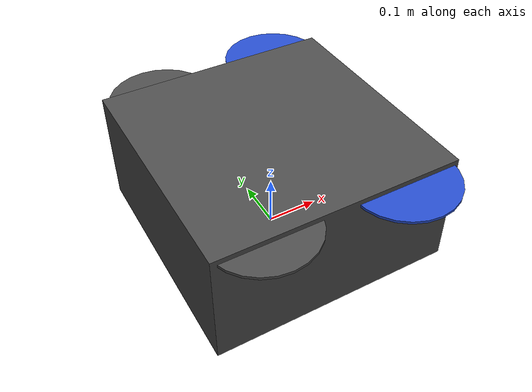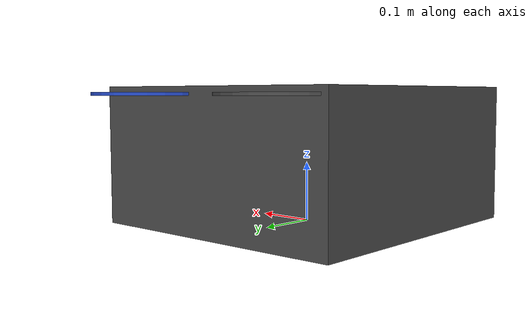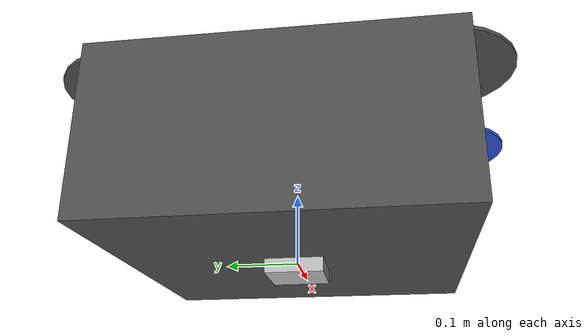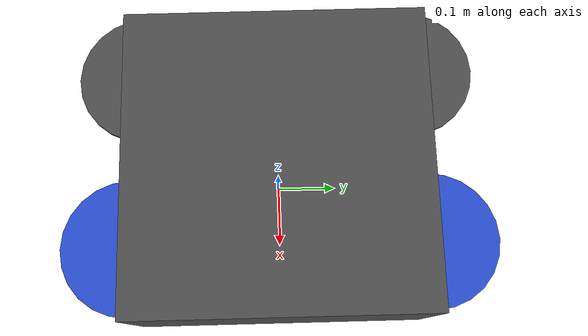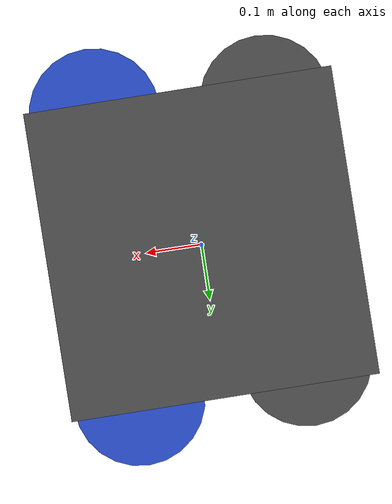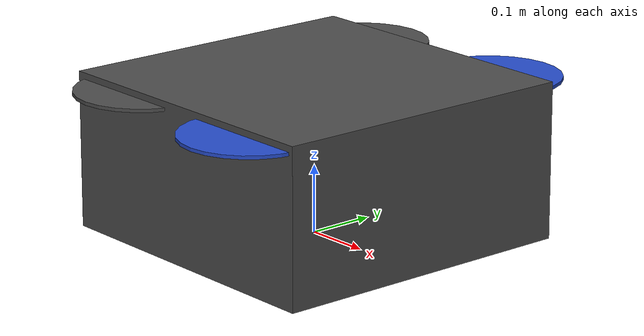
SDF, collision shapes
<?xml version='1.0'?>
<sdf version="1.6">
  <model name="iris_demo_cam">
    <include>
      <uri>model://iris_with_standoffs</uri>
      <uri>model://cam</uri>
    </include>
    <include>
      <uri>model://cam</uri>
    </include>
    <joint name='cgo3_camera_joint' type='revolute'>
      <child>iris_demo_cam::cam_ros::link</child>
      <parent>iris_demo_cam::iris::base_link</parent>
      <pose>-0.41 0.03 -0.162 0 0 0</pose>
      <axis>
        <xyz>0 -1 0</xyz>
        <limit>
          <lower>-1.05</lower>
          <upper>2.09</upper>
          <effort>100</effort>
          <velocity>-1</velocity>
        </limit>
        <dynamics>
          <damping>0.1</damping>
        </dynamics>
        <use_parent_model_frame>1</use_parent_model_frame>
      </axis>
      <physics>
        <ode>
          <implicit_spring_damper>1</implicit_spring_damper>
          <limit>
            <!-- testing soft limits -->
            <cfm>0.1</cfm>
            <erp>0.2</erp>
          </limit>
        </ode>
      </physics>
    </joint>

    <!-- plugins -->
    <plugin name='rosbag' filename='librotors_gazebo_multirotor_base_plugin.so'>
      <robotNamespace/>
      <linkName>iris::base_link</linkName>
      <rotorVelocitySlowdownSim>10</rotorVelocitySlowdownSim>
    </plugin>
    <plugin name='front_right_motor_model' filename='librotors_gazebo_motor_model.so'>
      <robotNamespace/>
      <jointName>iris::rotor_0_joint</jointName>
      <linkName>iris::rotor_0</linkName>
      <turningDirection>ccw</turningDirection>
      <timeConstantUp>0.0125</timeConstantUp>
      <timeConstantDown>0.025</timeConstantDown>
      <maxRotVelocity>1100</maxRotVelocity>
      <motorConstant>8.54858e-06</motorConstant>
      <momentConstant>0.06</momentConstant>
      <commandSubTopic>/gazebo/command/motor_speed</commandSubTopic>
      <motorNumber>0</motorNumber>
      <rotorDragCoefficient>0.000806428</rotorDragCoefficient>
      <rollingMomentCoefficient>1e-06</rollingMomentCoefficient>
      <motorSpeedPubTopic>/motor_speed/0</motorSpeedPubTopic>
      <rotorVelocitySlowdownSim>10</rotorVelocitySlowdownSim>
    </plugin>
    <plugin name='back_left_motor_model' filename='librotors_gazebo_motor_model.so'>
      <robotNamespace/>
      <jointName>iris::rotor_1_joint</jointName>
      <linkName>iris::rotor_1</linkName>
      <turningDirection>ccw</turningDirection>
      <timeConstantUp>0.0125</timeConstantUp>
      <timeConstantDown>0.025</timeConstantDown>
      <maxRotVelocity>1100</maxRotVelocity>
      <motorConstant>8.54858e-06</motorConstant>
      <momentConstant>0.06</momentConstant>
      <commandSubTopic>/gazebo/command/motor_speed</commandSubTopic>
      <motorNumber>1</motorNumber>
      <rotorDragCoefficient>0.000806428</rotorDragCoefficient>
      <rollingMomentCoefficient>1e-06</rollingMomentCoefficient>
      <motorSpeedPubTopic>/motor_speed/1</motorSpeedPubTopic>
      <rotorVelocitySlowdownSim>10</rotorVelocitySlowdownSim>
    </plugin>
   <plugin name='front_left_motor_model' filename='librotors_gazebo_motor_model.so'>
      <robotNamespace/>
      <jointName>iris::rotor_2_joint</jointName>
      <linkName>iris::rotor_2</linkName>
      <turningDirection>cw</turningDirection>
      <timeConstantUp>0.0125</timeConstantUp>
      <timeConstantDown>0.025</timeConstantDown>
      <maxRotVelocity>1100</maxRotVelocity>
      <motorConstant>8.54858e-06</motorConstant>
      <momentConstant>0.06</momentConstant>
      <commandSubTopic>/gazebo/command/motor_speed</commandSubTopic>
      <motorNumber>2</motorNumber>
      <rotorDragCoefficient>0.000806428</rotorDragCoefficient>
      <rollingMomentCoefficient>1e-06</rollingMomentCoefficient>
      <motorSpeedPubTopic>/motor_speed/2</motorSpeedPubTopic>
      <rotorVelocitySlowdownSim>10</rotorVelocitySlowdownSim>
    </plugin>
   <plugin name='back_right_motor_model' filename='librotors_gazebo_motor_model.so'>
      <robotNamespace/>
      <jointName>iris::rotor_3_joint</jointName>
      <linkName>iris::rotor_3</linkName>
      <turningDirection>cw</turningDirection>
      <timeConstantUp>0.0125</timeConstantUp>
      <timeConstantDown>0.025</timeConstantDown>
      <maxRotVelocity>1100</maxRotVelocity>
      <motorConstant>8.54858e-06</motorConstant>
      <momentConstant>0.06</momentConstant>
      <commandSubTopic>/gazebo/command/motor_speed</commandSubTopic>
      <motorNumber>3</motorNumber>
      <rotorDragCoefficient>0.000806428</rotorDragCoefficient>
      <rollingMomentCoefficient>1e-06</rollingMomentCoefficient>
      <motorSpeedPubTopic>/motor_speed/3</motorSpeedPubTopic>
      <rotorVelocitySlowdownSim>10</rotorVelocitySlowdownSim>
    </plugin>
    <plugin name='rotors_gazebo_imu_plugin' filename='librotors_gazebo_imu_plugin.so'>
      <robotNamespace/>
      <linkName>iris::iris/imu_link</linkName>
      <imuTopic>/imu</imuTopic>
      <gyroscopeNoiseDensity>0.0003394</gyroscopeNoiseDensity>
      <gyroscopeRandomWalk>3.8785e-05</gyroscopeRandomWalk>
      <gyroscopeBiasCorrelationTime>1000.0</gyroscopeBiasCorrelationTime>
      <gyroscopeTurnOnBiasSigma>0.0087</gyroscopeTurnOnBiasSigma>
      <accelerometerNoiseDensity>0.004</accelerometerNoiseDensity>
      <accelerometerRandomWalk>0.006</accelerometerRandomWalk>
      <accelerometerBiasCorrelationTime>300.0</accelerometerBiasCorrelationTime>
      <accelerometerTurnOnBiasSigma>0.196</accelerometerTurnOnBiasSigma>
    </plugin>
    <plugin name='mavlink_interface' filename='librotors_gazebo_mavlink_interface.so'>
      <robotNamespace/>
      <imuSubTopic>/imu</imuSubTopic>
      <mavlink_addr>INADDR_ANY</mavlink_addr>
      <mavlink_udp_port>14560</mavlink_udp_port>
      <motorSpeedCommandPubTopic>/gazebo/command/motor_speed</motorSpeedCommandPubTopic>
      <control_channels>
        <channel name='rotor1'>
          <input_index>0</input_index>
          <input_offset>0</input_offset>
          <input_scaling>1000</input_scaling>
          <zero_position_disarmed>0</zero_position_disarmed>
          <zero_position_armed>100</zero_position_armed>
          <joint_control_type>velocity</joint_control_type>
        </channel>
       <channel name='rotor2'>
          <input_index>1</input_index>
          <input_offset>0</input_offset>
          <input_scaling>1000</input_scaling>
          <zero_position_disarmed>0</zero_position_disarmed>
          <zero_position_armed>100</zero_position_armed>
          <joint_control_type>velocity</joint_control_type>
        </channel>
        <channel name='rotor3'>
          <input_index>2</input_index>
          <input_offset>0</input_offset>
          <input_scaling>1000</input_scaling>
          <zero_position_disarmed>0</zero_position_disarmed>
          <zero_position_armed>100</zero_position_armed>
          <joint_control_type>velocity</joint_control_type>
        </channel>
       <channel name='rotor4'>
          <input_index>3</input_index>
          <input_offset>0</input_offset>
          <input_scaling>1000</input_scaling>
          <zero_position_disarmed>0</zero_position_disarmed>
          <zero_position_armed>100</zero_position_armed>
          <joint_control_type>velocity</joint_control_type>
        </channel>
        <channel name='rotor5'>
          <input_index>4</input_index>
          <input_offset>1</input_offset>
          <input_scaling>324.6</input_scaling>
          <zero_position_disarmed>0</zero_position_disarmed>
          <zero_position_armed>0</zero_position_armed>
          <joint_control_type>velocity</joint_control_type>
          <joint_control_pid>
            <p>0.1</p>
            <i>0</i>
            <d>0</d>
            <iMax>0.0</iMax>
            <iMin>0.0</iMin>
            <cmdMax>2</cmdMax>
            <cmdMin>-2</cmdMin>
          </joint_control_pid>
          <joint_name>zephyr_delta_wing::propeller_joint</joint_name>
        </channel>
        <channel name='rotor6'>
          <input_index>5</input_index>
          <input_offset>0</input_offset>
          <input_scaling>0.524</input_scaling>
          <zero_position_disarmed>0</zero_position_disarmed>
          <zero_position_armed>0</zero_position_armed>
          <joint_control_type>position</joint_control_type>
          <joint_name>zephyr_delta_wing::flap_left_joint</joint_name>
          <joint_control_pid>
            <p>10.0</p>
            <i>0</i>
            <d>0</d>
            <iMax>0</iMax>
            <iMin>0</iMin>
            <cmdMax>20</cmdMax>
            <cmdMin>-20</cmdMin>
          </joint_control_pid>
        </channel>
        <channel name='rotor7'>
          <input_index>6</input_index>
          <input_offset>0</input_offset>
          <input_scaling>0.524</input_scaling>
          <zero_position_disarmed>0</zero_position_disarmed>
          <zero_position_armed>0</zero_position_armed>
          <joint_control_type>position</joint_control_type>
          <joint_name>zephyr_delta_wing::flap_right_joint</joint_name>
          <joint_control_pid>
            <p>10.0</p>
            <i>0</i>
            <d>0</d>
            <iMax>0</iMax>
            <iMin>0</iMin>
            <cmdMax>20</cmdMax>
            <cmdMin>-20</cmdMin>
          </joint_control_pid>
        </channel>
        <channel name='rotor8'>
          <input_index>7</input_index>
          <input_offset>0</input_offset>
          <input_scaling>0.524</input_scaling>
          <zero_position_disarmed>0</zero_position_disarmed>
          <zero_position_armed>0</zero_position_armed>
          <joint_control_type>position</joint_control_type>
        </channel>
      </control_channels>
    </plugin>

  </model>
</sdf>

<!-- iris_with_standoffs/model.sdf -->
<sdf version='1.6'>
  <model name='iris'>
    <pose>0 0 0.194923 0 0 0</pose>
    <link name='base_link'>
      <velocity_decay>
        <linear>0.0</linear>
        <angular>0.0</angular>
      </velocity_decay>
      <inertial>
        <pose>0 0 0 0 0 0</pose>
        <mass>1.5</mass>
        <inertia>
          <ixx>0.008</ixx>
          <ixy>0</ixy>
          <ixz>0</ixz>
          <iyy>0.015</iyy>
          <iyz>0</iyz>
          <izz>0.017</izz>
        </inertia>
      </inertial>
      <collision name='base_link_collision'>
        <pose>0 0 -0.08 0 0 0</pose>
        <geometry>
          <box>
            <size>0.47 0.47 0.23</size>
          </box>
        </geometry>
        <surface>
          <contact>
            <ode>
              <max_vel>100.0</max_vel>
              <min_depth>0.001</min_depth>
            </ode>
          </contact>
          <friction>
            <ode>
              <mu>1.0</mu>
              <mu2>1.0</mu2>
            </ode>
          </friction>
        </surface>
      </collision>
      <visual name='base_link_visual'>
        <geometry>
          <mesh>
            <uri>model://../model_source/models/iris_with_standoffs/meshes/iris.dae</uri>
          </mesh>
        </geometry>
        <material>
          <script>
            <name>Gazebo/DarkGrey</name>
          </script>
        </material>
      </visual>

      <visual name='front_left_leg_visual'>
        <pose>0.123 0.22 -0.11 0 0 0</pose>
        <geometry>
          <cylinder>
            <radius>0.005</radius>
            <length>0.17</length>
          </cylinder>
        </geometry>
        <material>
          <script>
            <name>Gazebo/FlatBlack</name>
            <uri>file://media/materials/scripts/gazebo.material</uri>
          </script>
        </material>
      </visual>
      <visual name='front_right_leg_visual'>
        <pose>0.123 -0.22 -0.11 0 0 0</pose>
        <geometry>
          <cylinder>
            <radius>0.005</radius>
            <length>0.17</length>
          </cylinder>
        </geometry>
        <material>
          <script>
            <name>Gazebo/FlatBlack</name>
            <uri>file://media/materials/scripts/gazebo.material</uri>
          </script>
        </material>
      </visual>
      <visual name='rear_left_leg_visual'>
        <pose>-0.140 0.21 -0.11 0 0 0</pose>
        <geometry>
          <cylinder>
            <radius>0.005</radius>
            <length>0.17</length>
          </cylinder>
        </geometry>
        <material>
          <script>
            <name>Gazebo/FlatBlack</name>
            <uri>file://media/materials/scripts/gazebo.material</uri>
          </script>
        </material>
      </visual>
      <visual name='rear_right_leg_visual'>
        <pose>-0.140 -0.21 -0.11 0 0 0</pose>
        <geometry>
          <cylinder>
            <radius>0.005</radius>
            <length>0.17</length>
          </cylinder>
        </geometry>
        <material>
          <script>
            <name>Gazebo/FlatBlack</name>
            <uri>file://media/materials/scripts/gazebo.material</uri>
          </script>
        </material>
      </visual>
    </link>
    <link name='iris/ground_truth/odometry_sensorgt_link'>
      <pose>0 0 0 0 -0 0</pose>
      <inertial>
        <pose>0 0 0 0 -0 0</pose>
        <mass>0.15</mass>
        <inertia>
          <ixx>0.0001</ixx>
          <ixy>0</ixy>
          <ixz>0</ixz>
          <iyy>0.0002</iyy>
          <iyz>0</iyz>
          <izz>0.0002</izz>
        </inertia>
      </inertial>
    </link>
    <joint name='iris/ground_truth/odometry_sensorgt_joint' type='revolute'>
      <child>iris/ground_truth/odometry_sensorgt_link</child>
      <parent>base_link</parent>
      <axis>
        <xyz>0 0 1</xyz>
        <limit>
          <lower>0</lower>
          <upper>0</upper>
          <effort>0</effort>
          <velocity>0</velocity>
        </limit>
        <dynamics>
          <damping>1.0</damping>
        </dynamics>
        <use_parent_model_frame>1</use_parent_model_frame>
      </axis>
      <physics>
        <ode>
          <implicit_spring_damper>1</implicit_spring_damper>
        </ode>
      </physics>
    </joint>
    <link name='iris/imu_link'>
      <inertial>
        <pose>0 0 0 0 0 0</pose>
        <mass>0.15</mass>
        <inertia>
          <ixx>0.00001</ixx>
          <ixy>0</ixy>
          <ixz>0</ixz>
          <iyy>0.00002</iyy>
          <iyz>0</iyz>
          <izz>0.00002</izz>
        </inertia>
      </inertial>
      <sensor name="imu_sensor" type="imu">
        <pose>0 0 0 3.141593 0 0</pose>
        <always_on>1</always_on>
        <update_rate>1000.0</update_rate>
      </sensor>
    </link>
    <joint name='iris/imu_joint' type='revolute'>
      <child>iris/imu_link</child>
      <parent>base_link</parent>
      <axis>
        <xyz>0 0 1</xyz>
        <limit>
          <lower>0</lower>
          <upper>0</upper>
          <effort>0</effort>
          <velocity>0</velocity>
        </limit>
        <dynamics>
          <damping>1.0</damping>
        </dynamics>
        <use_parent_model_frame>1</use_parent_model_frame>
      </axis>
      <physics>
        <ode>
          <implicit_spring_damper>1</implicit_spring_damper>
        </ode>
      </physics>
    </joint>
    <link name='rotor_0'>
      <pose>0.13 -0.22 0.023 0 -0 0</pose>
      <inertial>
        <pose>0 0 0 0 -0 0</pose>
        <mass>0.025</mass>
        <inertia>
          <ixx>9.75e-06</ixx>
          <ixy>0</ixy>
          <ixz>0</ixz>
          <iyy>0.000166704</iyy>
          <iyz>0</iyz>
          <izz>0.000167604</izz>
        </inertia>
      </inertial>
      <collision name='rotor_0_collision'>
        <pose>0 0 0 0 -0 0</pose>
        <geometry>
          <cylinder>
            <length>0.005</length>
            <radius>0.1</radius>
          </cylinder>
        </geometry>
        <surface>
          <contact>
            <ode/>
          </contact>
          <friction>
            <ode/>
          </friction>
        </surface>
      </collision>
      <visual name='rotor_0_visual'>
        <pose>0 0 0 0 -0 0</pose>
        <geometry>
          <mesh>
            <scale>1 1 1</scale>
            <uri>model://../model_source/models/iris_with_standoffs/meshes/iris_prop_ccw.dae</uri>
          </mesh>
        </geometry>
        <material>
          <script>
            <name>Gazebo/Blue</name>
            <uri>__default__</uri>
          </script>
        </material>
      </visual>
      <gravity>1</gravity>
      <velocity_decay/>
      <self_collide>0</self_collide>
    </link>
    <joint name='rotor_0_joint' type='revolute'>
      <child>rotor_0</child>
      <parent>base_link</parent>
      <axis>
        <xyz>0 0 1</xyz>
        <limit>
          <lower>-1e+16</lower>
          <upper>1e+16</upper>
        </limit>
        <dynamics>
          <damping>0.004</damping>
        </dynamics>
        <use_parent_model_frame>1</use_parent_model_frame>
      </axis>
      <physics>
        <ode>
          <implicit_spring_damper>1</implicit_spring_damper>
        </ode>
      </physics>
    </joint>
    <link name='rotor_1'>
      <pose>-0.13 0.2 0.023 0 -0 0</pose>
      <inertial>
        <pose>0 0 0 0 -0 0</pose>
        <mass>0.025</mass>
        <inertia>
          <ixx>9.75e-06</ixx>
          <ixy>0</ixy>
          <ixz>0</ixz>
          <iyy>0.000166704</iyy>
          <iyz>0</iyz>
          <izz>0.000167604</izz>
        </inertia>
      </inertial>
      <collision name='rotor_1_collision'>
        <pose>0 0 0 0 -0 0</pose>
        <geometry>
          <cylinder>
            <length>0.005</length>
            <radius>0.1</radius>
          </cylinder>
        </geometry>
        <surface>
          <contact>
            <ode/>
          </contact>
          <friction>
            <ode/>
          </friction>
        </surface>
      </collision>
      <visual name='rotor_1_visual'>
        <pose>0 0 0 0 -0 0</pose>
        <geometry>
          <mesh>
            <scale>1 1 1</scale>
            <uri>model://../model_source/models/iris_with_standoffs/meshes/iris_prop_ccw.dae</uri>
          </mesh>
        </geometry>
        <material>
          <script>
            <name>Gazebo/DarkGrey</name>
            <uri>__default__</uri>
          </script>
        </material>
      </visual>
      <gravity>1</gravity>
      <velocity_decay/>
      <self_collide>0</self_collide>
    </link>
    <joint name='rotor_1_joint' type='revolute'>
      <child>rotor_1</child>
      <parent>base_link</parent>
      <axis>
        <xyz>0 0 1</xyz>
        <limit>
          <lower>-1e+16</lower>
          <upper>1e+16</upper>
        </limit>
        <dynamics>
          <damping>0.004</damping>
        </dynamics>
        <use_parent_model_frame>1</use_parent_model_frame>
      </axis>
      <physics>
        <ode>
          <implicit_spring_damper>1</implicit_spring_damper>
        </ode>
      </physics>
    </joint>
    <link name='rotor_2'>
      <pose>0.13 0.22 0.023 0 -0 0</pose>
      <inertial>
        <pose>0 0 0 0 -0 0</pose>
        <mass>0.025</mass>
        <inertia>
          <ixx>9.75e-06</ixx>
          <ixy>0</ixy>
          <ixz>0</ixz>
          <iyy>0.000166704</iyy>
          <iyz>0</iyz>
          <izz>0.000167604</izz>
        </inertia>
      </inertial>
      <collision name='rotor_2_collision'>
        <pose>0 0 0 0 -0 0</pose>
        <geometry>
          <cylinder>
            <length>0.005</length>
            <radius>0.1</radius>
          </cylinder>
        </geometry>
        <surface>
          <contact>
            <ode/>
          </contact>
          <friction>
            <ode/>
          </friction>
        </surface>
      </collision>
      <visual name='rotor_2_visual'>
        <pose>0 0 0 0 -0 0</pose>
        <geometry>
          <mesh>
            <scale>1 1 1</scale>
            <uri>model://../model_source/models/iris_with_standoffs/meshes/iris_prop_cw.dae</uri>
          </mesh>
        </geometry>
        <material>
          <script>
            <name>Gazebo/Blue</name>
            <uri>__default__</uri>
          </script>
        </material>
      </visual>
      <gravity>1</gravity>
      <velocity_decay/>
      <self_collide>0</self_collide>
    </link>
    <joint name='rotor_2_joint' type='revolute'>
      <child>rotor_2</child>
      <parent>base_link</parent>
      <axis>
        <xyz>0 0 1</xyz>
        <limit>
          <lower>-1e+16</lower>
          <upper>1e+16</upper>
        </limit>
        <dynamics>
          <damping>0.004</damping>
        </dynamics>
        <use_parent_model_frame>1</use_parent_model_frame>
      </axis>
      <physics>
        <ode>
          <implicit_spring_damper>1</implicit_spring_damper>
        </ode>
      </physics>
    </joint>
    <link name='rotor_3'>
      <pose>-0.13 -0.2 0.023 0 -0 0</pose>
      <inertial>
        <pose>0 0 0 0 -0 0</pose>
        <mass>0.025</mass>
        <inertia>
          <ixx>9.75e-06</ixx>
          <ixy>0</ixy>
          <ixz>0</ixz>
          <iyy>0.000166704</iyy>
          <iyz>0</iyz>
          <izz>0.000167604</izz>
        </inertia>
      </inertial>
      <collision name='rotor_3_collision'>
        <pose>0 0 0 0 -0 0</pose>
        <geometry>
          <cylinder>
            <length>0.005</length>
            <radius>0.1</radius>
          </cylinder>
        </geometry>
        <surface>
          <contact>
            <ode/>
          </contact>
          <friction>
            <ode/>
          </friction>
        </surface>
      </collision>
      <visual name='rotor_3_visual'>
        <pose>0 0 0 0 -0 0</pose>
        <geometry>
          <mesh>
            <scale>1 1 1</scale>
            <uri>model://../model_source/models/iris_with_standoffs/meshes/iris_prop_cw.dae</uri>
          </mesh>
        </geometry>
        <material>
          <script>
            <name>Gazebo/DarkGrey</name>
            <uri>__default__</uri>
          </script>
        </material>
      </visual>
      <gravity>1</gravity>
      <velocity_decay/>
      <self_collide>0</self_collide>
    </link>
    <joint name='rotor_3_joint' type='revolute'>
      <child>rotor_3</child>
      <parent>base_link</parent>
      <axis>
        <xyz>0 0 1</xyz>
        <limit>
          <lower>-1e+16</lower>
          <upper>1e+16</upper>
        </limit>
        <dynamics>
          <damping>0.004</damping>
        </dynamics>
        <use_parent_model_frame>1</use_parent_model_frame>
      </axis>
      <physics>
        <ode>
          <implicit_spring_damper>1</implicit_spring_damper>
        </ode>
      </physics>
    </joint>
    <static>0</static>
  </model>
</sdf>

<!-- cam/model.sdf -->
<sdf version="1.4">
  <model name="cam_ros">
    <pose>0 0 0.035 0 0 0</pose>
    <link name="link">
      <inertial>
    <pose>0 0 -0.03 0 0 0</pose>
        <mass>0.1</mass>
      </inertial>

      <visual name="visual">
        <geometry>
          <mesh>
            <uri>model://hokuyo/meshes/hokuyo.dae</uri>
          </mesh>
        </geometry>
      </visual>

      <collision name="collision-base">
        <pose>0 0 -0.0145 0 0 0</pose>
        <geometry>
          <box>
            <size>0.08 0.08 0.08</size>
          </box>
        </geometry>
      </collision>
      <collision name="collision-top">
        <pose>0 0 0.0205 0 0 0</pose>
        <geometry>
          <cylinder>
            <radius>0.021</radius>
            <length>0.029</length>
          </cylinder>
        </geometry>
      </collision>
    <sensor type="camera" name="camera1">
      <camera name="head">
        <horizontal_fov>1.3962634</horizontal_fov>
        <image>
          <width>800</width>
          <height>800</height>
          <format>R8G8B8</format>
        </image>
        <clip>
          <near>0.02</near>
          <far>300</far>
        </clip>
        <noise>
          <type>gaussian</type>
          <mean>0.0</mean>
          <stddev>0.007</stddev>
        </noise>
      </camera>
        <always_on>1</always_on>
        <update_rate>10</update_rate>
        <visualize>true</visualize>
      <plugin name="camera_controller" filename="libgazebo_ros_camera.so">
        <alwaysOn>true</alwaysOn>
        <updateRate>0.0</updateRate>
        <cameraName>ardrone</cameraName>
        <imageTopicName>image_raw</imageTopicName>
        <cameraInfoTopicName>camera_info</cameraInfoTopicName>
        <frameName>camera_link</frameName>
        <hackBaseline>0.07</hackBaseline>
        <distortionK1>0.0</distortionK1>
        <distortionK2>0.0</distortionK2>
        <distortionK3>0.0</distortionK3>
        <distortionT1>0.0</distortionT1>
        <distortionT2>0.0</distortionT2>
      </plugin>
    </sensor>
    </link>
  </model>
</sdf>
